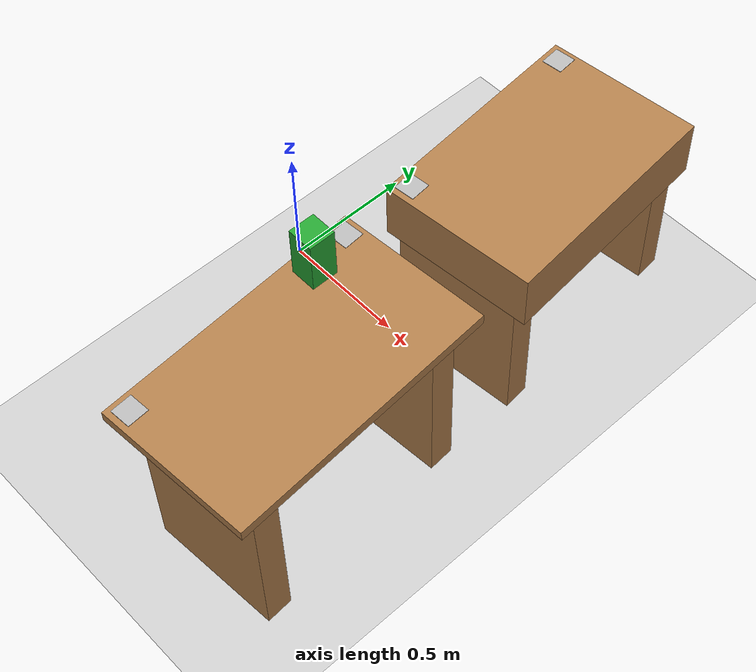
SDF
<sdf version="1.6">
 <world name="default">
  <light name="sun" type="directional">
   <pose>0 0 10 0 -0 0</pose>
   <diffuse>0.8 0.8 0.8 1</diffuse>
   <specular>0.2 0.2 0.2 1</specular>
   <attenuation>
    <range>1000</range>
    <constant>0.9</constant>
    <linear>0.01</linear>
    <quadratic>0.001</quadratic>
   </attenuation>
   <direction>-0.5 0.1 -0.9</direction>
  </light>
  <physics name="dart_2ms" default="0" type="dart">
   <max_step_size>0.002</max_step_size>
   <real_time_factor>1</real_time_factor>
   <real_time_update_rate>500</real_time_update_rate>
   <dart><solver><solver_type>pgs</solver_type></solver></dart>
  </physics>
  <model name="ground_plane">
   <static>1</static>
   <link name="link">
    <collision name="collision">
     <geometry><plane><normal>0 0 1</normal><size>100 100</size></plane></geometry>
     <surface>
      <contact><collide_bitmask>65535</collide_bitmask></contact>
      <friction><ode><mu>100</mu><mu2>50</mu2></ode></friction>
     </surface>
    </collision>
    <visual name="visual">
     <cast_shadows>0</cast_shadows>
     <geometry><plane><normal>0 0 1</normal><size>100 100</size></plane></geometry>
     <material>
      <script><uri>file://media/materials/scripts/gazebo.material</uri><name>Gazebo/Grey</name></script>
     </material>
    </visual>
   </link>
  </model>
  <gravity>0 0 -9.8</gravity>
  <magnetic_field>6e-06 2.3e-05 -4.2e-05</magnetic_field>
  <atmosphere type="adiabatic"/>
  <scene><ambient>0.4 0.4 0.4 1</ambient><background>0.7 0.7 0.7 1</background><shadows>1</shadows></scene>
  <audio><device>default</device></audio>
  <spherical_coordinates>
   <surface_model>EARTH_WGS84</surface_model>
   <latitude_deg>0</latitude_deg>
   <longitude_deg>0</longitude_deg>
   <elevation>0</elevation>
   <heading_deg>0</heading_deg>
  </spherical_coordinates>
  <model name="table_a">
   <static>1</static>
   <link name="link">
    <visual name="surface">
     <pose>0 0 0.65 0 -0 0</pose>
     <geometry><box><size>0.9 0.6 0.22</size></box></geometry>
     <material>
      <script><uri>file://media/materials/scripts/gazebo.material</uri><name>Gazebo/Wood</name></script>
     </material>
    </visual>
    <visual name="leg_left">
     <pose>0.39 0 0.355 0 -0 0</pose>
     <geometry><box><size>0.1 0.5 0.71</size></box></geometry>
     <material>
      <script><uri>file://media/materials/scripts/gazebo.material</uri><name>Gazebo/Wood</name></script>
     </material>
    </visual>
    <visual name="leg_right">
     <pose>-0.39 0 0.355 0 -0 0</pose>
     <geometry><box><size>0.1 0.5 0.71</size></box></geometry>
     <material>
      <script><uri>file://media/materials/scripts/gazebo.material</uri><name>Gazebo/Wood</name></script>
     </material>
    </visual>
    <collision name="surface">
     <pose>0 0 0.65 0 -0 0</pose>
     <geometry><box><size>0.9 0.6 0.22</size></box></geometry>
    </collision>
    <collision name="leg_left">
     <pose>0.39 0 0.355 0 -0 0</pose>
     <geometry><box><size>0.1 0.5 0.71</size></box></geometry>
    </collision>
    <collision name="leg_right">
     <pose>-0.39 0 0.355 0 -0 0</pose>
     <geometry><box><size>0.1 0.5 0.71</size></box></geometry>
    </collision>
    <visual name="marker_6">
     <pose>0.39 0.24 0.765 0 -0 0</pose>
     <geometry><mesh><uri>model://ar_marker_8cm_6/meshes/ar_marker_8cm.dae</uri></mesh></geometry>
    </visual>
    <visual name="marker_7">
     <pose>-0.39 0.24 0.765 0 -0 0</pose>
     <geometry><mesh><uri>model://ar_marker_8cm_7/meshes/ar_marker_8cm.dae</uri></mesh></geometry>
    </visual>
   </link>
   <pose>0.748927 0.485645 0 0 -0 1.66555</pose>
  </model>
  <model name="table_b">
   <static>1</static>
   <link name="link">
    <visual name="surface">
     <pose>0 0 0.73 0 -0 0</pose>
     <geometry><box><size>1.04 0.6 0.04</size></box></geometry>
     <material>
      <script><uri>file://media/materials/scripts/gazebo.material</uri><name>Gazebo/Wood</name></script>
     </material>
    </visual>
    <visual name="leg_left">
     <pose>0.39 0 0.355 0 -0 0</pose>
     <geometry><box><size>0.1 0.5 0.71</size></box></geometry>
     <material>
      <script><uri>file://media/materials/scripts/gazebo.material</uri><name>Gazebo/Wood</name></script>
     </material>
    </visual>
    <visual name="leg_right">
     <pose>-0.39 0 0.355 0 -0 0</pose>
     <geometry><box><size>0.1 0.5 0.71</size></box></geometry>
     <material>
      <script><uri>file://media/materials/scripts/gazebo.material</uri><name>Gazebo/Wood</name></script>
     </material>
    </visual>
    <collision name="surface">
     <pose>0 0 0.73 0 -0 0</pose>
     <geometry><box><size>1.04 0.6 0.04</size></box></geometry>
    </collision>
    <collision name="leg_left">
     <pose>0.39 0 0.355 0 -0 0</pose>
     <geometry><box><size>0.1 0.5 0.71</size></box></geometry>
    </collision>
    <collision name="leg_right">
     <pose>-0.39 0 0.355 0 -0 0</pose>
     <geometry><box><size>0.1 0.5 0.71</size></box></geometry>
    </collision>
    <visual name="marker_8">
     <pose>0.46 0.24 0.755 0 -0 0</pose>
     <geometry><mesh><uri>model://ar_marker_8cm_8/meshes/ar_marker_8cm.dae</uri></mesh></geometry>
    </visual>
    <visual name="marker_9">
     <pose>-0.46 0.24 0.755 0 -0 0</pose>
     <geometry><mesh><uri>model://ar_marker_8cm_9/meshes/ar_marker_8cm.dae</uri></mesh></geometry>
    </visual>
   </link>
   <pose>0.817595 -0.657634 0 0 -0 1.64286</pose>
  </model>
  <model name="box2">
   <link name="link">
    <inertial>
     <mass>0.3</mass>
     <inertia><ixx>0.00125</ixx><ixy>0</ixy><ixz>0</ixz><iyy>0.00125</iyy><iyz>0</iyz><izz>0.0005</izz></inertia>
    </inertial>
    <collision name="box"><geometry><box><size>0.1 0.1 0.2</size></box></geometry></collision>
    <visual name="box">
     <geometry><box><size>0.1 0.1 0.2</size></box></geometry>
     <material>
      <script><uri>file://media/materials/scripts/gazebo.material</uri><name>Gazebo/Green</name></script>
     </material>
    </visual>
   </link>
   <pose>0.58984 -0.386003 0.85 0 -1e-06 -0.00011</pose>
  </model>
 </world>
</sdf>
